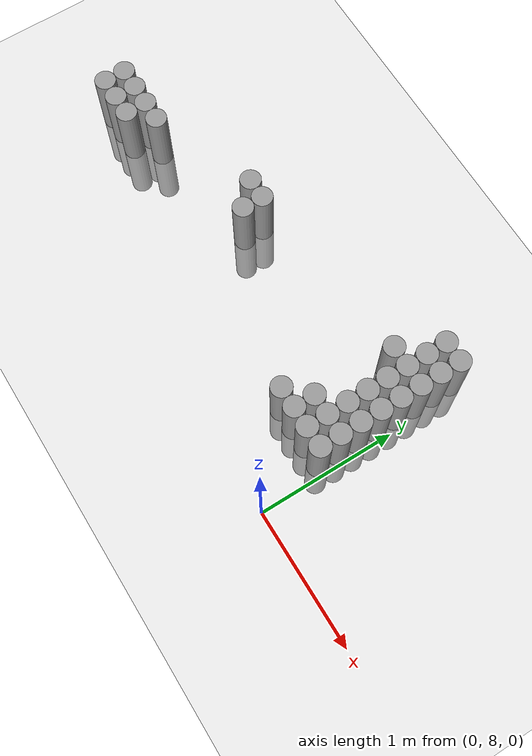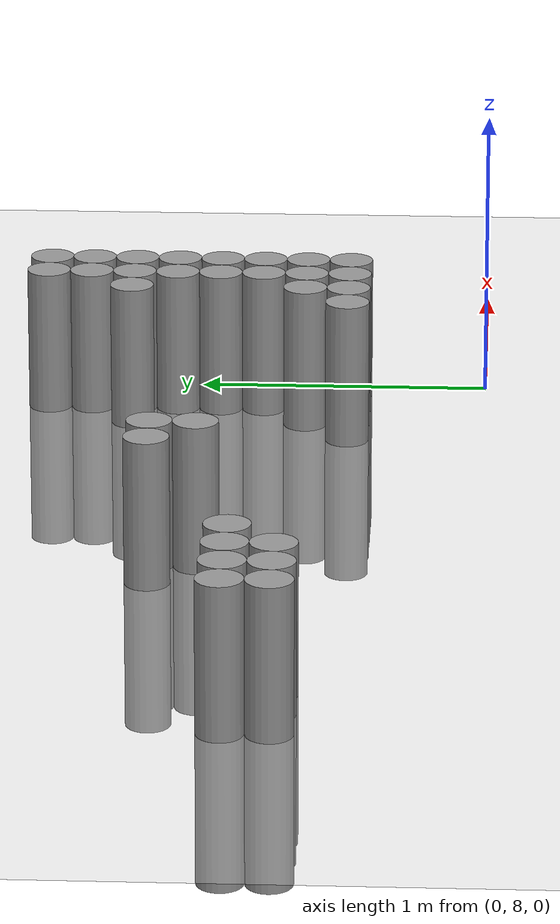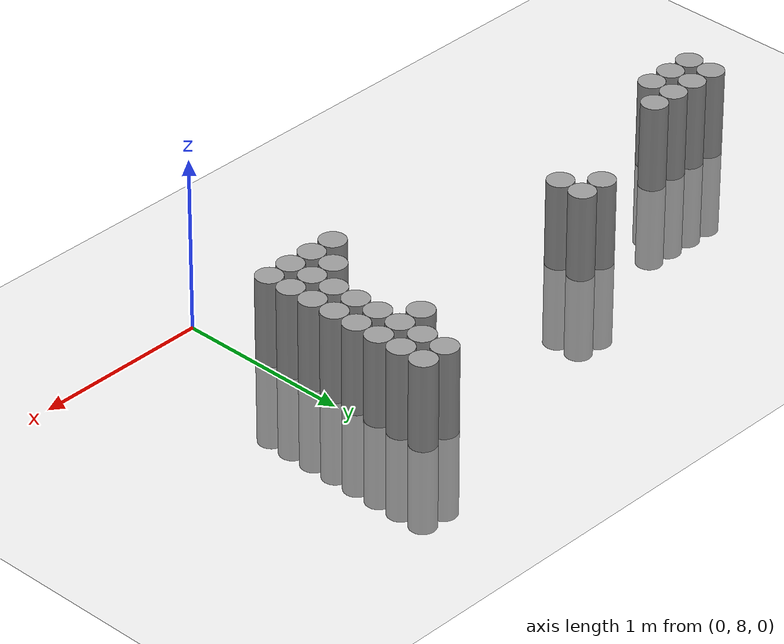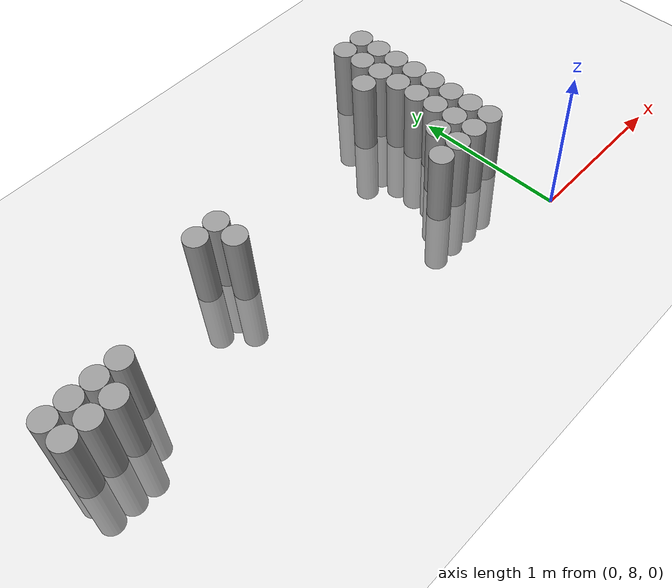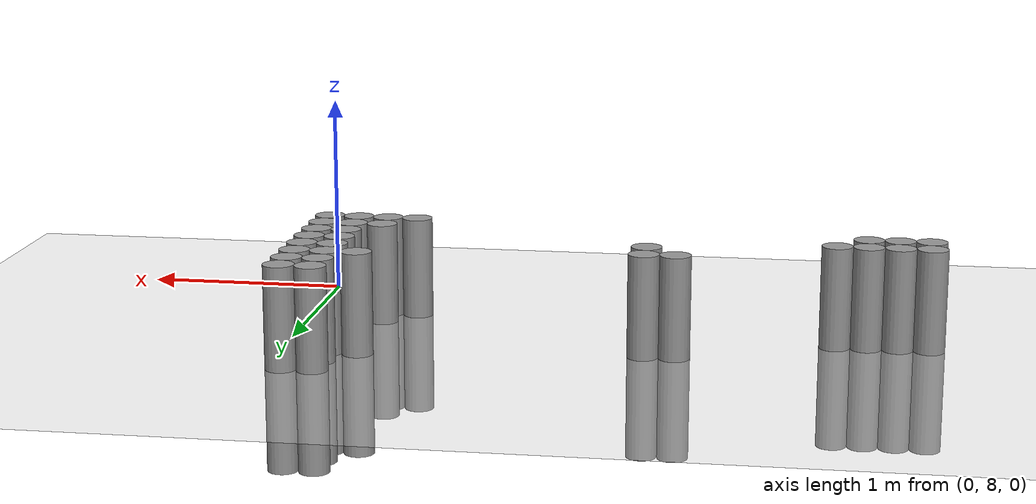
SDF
<sdf version="1.6">
 <world name="default">
  <model name="ground_plane">
   <static>1</static>
   <static>1</static>
   <link name="link">
    <collision name="collision">
     <geometry><plane><normal>0 0 1</normal><size>100 100</size></plane></geometry>
     <surface><friction><ode><mu>100</mu><mu2>50</mu2></ode></friction></surface>
    </collision>
    <visual name="visual">
     <cast_shadows>0</cast_shadows>
     <geometry><plane><normal>0 0 1</normal><size>100 100</size></plane></geometry>
     <material>
      <script><uri>file://media/materials/scripts/gazebo.material</uri><name>Gazebo/Grey</name></script>
     </material>
    </visual>
   </link>
  </model>
  <model name="unit_cylinder_169">
   <static>1</static>
   <pose>-3.075000 8.625000 0.000000 0.000000 0.000000 0.000000</pose>
   <link name="link">
    <inertial>
     <mass>1</mass>
     <inertia><ixx>0.145833</ixx><ixy>0</ixy><ixz>0</ixz><iyy>0.145833</iyy><iyz>0</iyz><izz>0.125</izz></inertia>
    </inertial>
    <collision name="collision">
     <geometry><cylinder><radius>0.075000</radius><length>1</length></cylinder></geometry>
    </collision>
    <visual name="visual">
     <geometry><cylinder><radius>0.075000</radius><length>1</length></cylinder></geometry>
     <material>
      <script><name>Gazebo/Grey</name><uri>file://media/materials/scripts/gazebo.material</uri></script>
     </material>
    </visual>
   </link>
  </model>
  <model name="unit_cylinder_170">
   <static>1</static>
   <pose>-3.075000 8.775000 0.000000 0.000000 0.000000 0.000000</pose>
   <link name="link">
    <inertial>
     <mass>1</mass>
     <inertia><ixx>0.145833</ixx><ixy>0</ixy><ixz>0</ixz><iyy>0.145833</iyy><iyz>0</iyz><izz>0.125</izz></inertia>
    </inertial>
    <collision name="collision">
     <geometry><cylinder><radius>0.075000</radius><length>1</length></cylinder></geometry>
    </collision>
    <visual name="visual">
     <geometry><cylinder><radius>0.075000</radius><length>1</length></cylinder></geometry>
     <material>
      <script><name>Gazebo/Grey</name><uri>file://media/materials/scripts/gazebo.material</uri></script>
     </material>
    </visual>
   </link>
  </model>
  <model name="unit_cylinder_171">
   <static>1</static>
   <pose>-2.925000 8.625000 0.000000 0.000000 0.000000 0.000000</pose>
   <link name="link">
    <inertial>
     <mass>1</mass>
     <inertia><ixx>0.145833</ixx><ixy>0</ixy><ixz>0</ixz><iyy>0.145833</iyy><iyz>0</iyz><izz>0.125</izz></inertia>
    </inertial>
    <collision name="collision">
     <geometry><cylinder><radius>0.075000</radius><length>1</length></cylinder></geometry>
    </collision>
    <visual name="visual">
     <geometry><cylinder><radius>0.075000</radius><length>1</length></cylinder></geometry>
     <material>
      <script><name>Gazebo/Grey</name><uri>file://media/materials/scripts/gazebo.material</uri></script>
     </material>
    </visual>
   </link>
  </model>
  <model name="unit_cylinder_172">
   <static>1</static>
   <pose>-2.925000 8.775000 0.000000 0.000000 0.000000 0.000000</pose>
   <link name="link">
    <inertial>
     <mass>1</mass>
     <inertia><ixx>0.145833</ixx><ixy>0</ixy><ixz>0</ixz><iyy>0.145833</iyy><iyz>0</iyz><izz>0.125</izz></inertia>
    </inertial>
    <collision name="collision">
     <geometry><cylinder><radius>0.075000</radius><length>1</length></cylinder></geometry>
    </collision>
    <visual name="visual">
     <geometry><cylinder><radius>0.075000</radius><length>1</length></cylinder></geometry>
     <material>
      <script><name>Gazebo/Grey</name><uri>file://media/materials/scripts/gazebo.material</uri></script>
     </material>
    </visual>
   </link>
  </model>
  <model name="unit_cylinder_173">
   <static>1</static>
   <pose>-2.775000 8.625000 0.000000 0.000000 0.000000 0.000000</pose>
   <link name="link">
    <inertial>
     <mass>1</mass>
     <inertia><ixx>0.145833</ixx><ixy>0</ixy><ixz>0</ixz><iyy>0.145833</iyy><iyz>0</iyz><izz>0.125</izz></inertia>
    </inertial>
    <collision name="collision">
     <geometry><cylinder><radius>0.075000</radius><length>1</length></cylinder></geometry>
    </collision>
    <visual name="visual">
     <geometry><cylinder><radius>0.075000</radius><length>1</length></cylinder></geometry>
     <material>
      <script><name>Gazebo/Grey</name><uri>file://media/materials/scripts/gazebo.material</uri></script>
     </material>
    </visual>
   </link>
  </model>
  <model name="unit_cylinder_174">
   <static>1</static>
   <pose>-2.775000 8.775000 0.000000 0.000000 0.000000 0.000000</pose>
   <link name="link">
    <inertial>
     <mass>1</mass>
     <inertia><ixx>0.145833</ixx><ixy>0</ixy><ixz>0</ixz><iyy>0.145833</iyy><iyz>0</iyz><izz>0.125</izz></inertia>
    </inertial>
    <collision name="collision">
     <geometry><cylinder><radius>0.075000</radius><length>1</length></cylinder></geometry>
    </collision>
    <visual name="visual">
     <geometry><cylinder><radius>0.075000</radius><length>1</length></cylinder></geometry>
     <material>
      <script><name>Gazebo/Grey</name><uri>file://media/materials/scripts/gazebo.material</uri></script>
     </material>
    </visual>
   </link>
  </model>
  <model name="unit_cylinder_175">
   <static>1</static>
   <pose>-2.625000 8.775000 0.000000 0.000000 0.000000 0.000000</pose>
   <link name="link">
    <inertial>
     <mass>1</mass>
     <inertia><ixx>0.145833</ixx><ixy>0</ixy><ixz>0</ixz><iyy>0.145833</iyy><iyz>0</iyz><izz>0.125</izz></inertia>
    </inertial>
    <collision name="collision">
     <geometry><cylinder><radius>0.075000</radius><length>1</length></cylinder></geometry>
    </collision>
    <visual name="visual">
     <geometry><cylinder><radius>0.075000</radius><length>1</length></cylinder></geometry>
     <material>
      <script><name>Gazebo/Grey</name><uri>file://media/materials/scripts/gazebo.material</uri></script>
     </material>
    </visual>
   </link>
  </model>
  <model name="unit_cylinder_185">
   <static>1</static>
   <pose>-1.875000 9.075000 0.000000 0.000000 0.000000 0.000000</pose>
   <link name="link">
    <inertial>
     <mass>1</mass>
     <inertia><ixx>0.145833</ixx><ixy>0</ixy><ixz>0</ixz><iyy>0.145833</iyy><iyz>0</iyz><izz>0.125</izz></inertia>
    </inertial>
    <collision name="collision">
     <geometry><cylinder><radius>0.075000</radius><length>1</length></cylinder></geometry>
    </collision>
    <visual name="visual">
     <geometry><cylinder><radius>0.075000</radius><length>1</length></cylinder></geometry>
     <material>
      <script><name>Gazebo/Grey</name><uri>file://media/materials/scripts/gazebo.material</uri></script>
     </material>
    </visual>
   </link>
  </model>
  <model name="unit_cylinder_186">
   <static>1</static>
   <pose>-1.725000 8.925000 0.000000 0.000000 0.000000 0.000000</pose>
   <link name="link">
    <inertial>
     <mass>1</mass>
     <inertia><ixx>0.145833</ixx><ixy>0</ixy><ixz>0</ixz><iyy>0.145833</iyy><iyz>0</iyz><izz>0.125</izz></inertia>
    </inertial>
    <collision name="collision">
     <geometry><cylinder><radius>0.075000</radius><length>1</length></cylinder></geometry>
    </collision>
    <visual name="visual">
     <geometry><cylinder><radius>0.075000</radius><length>1</length></cylinder></geometry>
     <material>
      <script><name>Gazebo/Grey</name><uri>file://media/materials/scripts/gazebo.material</uri></script>
     </material>
    </visual>
   </link>
  </model>
  <model name="unit_cylinder_187">
   <static>1</static>
   <pose>-1.725000 9.075000 0.000000 0.000000 0.000000 0.000000</pose>
   <link name="link">
    <inertial>
     <mass>1</mass>
     <inertia><ixx>0.145833</ixx><ixy>0</ixy><ixz>0</ixz><iyy>0.145833</iyy><iyz>0</iyz><izz>0.125</izz></inertia>
    </inertial>
    <collision name="collision">
     <geometry><cylinder><radius>0.075000</radius><length>1</length></cylinder></geometry>
    </collision>
    <visual name="visual">
     <geometry><cylinder><radius>0.075000</radius><length>1</length></cylinder></geometry>
     <material>
      <script><name>Gazebo/Grey</name><uri>file://media/materials/scripts/gazebo.material</uri></script>
     </material>
    </visual>
   </link>
  </model>
  <model name="unit_cylinder_188">
   <static>1</static>
   <pose>-0.525000 8.475000 0.000000 0.000000 0.000000 0.000000</pose>
   <link name="link">
    <inertial>
     <mass>1</mass>
     <inertia><ixx>0.145833</ixx><ixy>0</ixy><ixz>0</ixz><iyy>0.145833</iyy><iyz>0</iyz><izz>0.125</izz></inertia>
    </inertial>
    <collision name="collision">
     <geometry><cylinder><radius>0.075000</radius><length>1</length></cylinder></geometry>
    </collision>
    <visual name="visual">
     <geometry><cylinder><radius>0.075000</radius><length>1</length></cylinder></geometry>
     <material>
      <script><name>Gazebo/Grey</name><uri>file://media/materials/scripts/gazebo.material</uri></script>
     </material>
    </visual>
   </link>
  </model>
  <model name="unit_cylinder_190">
   <static>1</static>
   <pose>-0.375000 8.475000 0.000000 0.000000 0.000000 0.000000</pose>
   <link name="link">
    <inertial>
     <mass>1</mass>
     <inertia><ixx>0.145833</ixx><ixy>0</ixy><ixz>0</ixz><iyy>0.145833</iyy><iyz>0</iyz><izz>0.125</izz></inertia>
    </inertial>
    <collision name="collision">
     <geometry><cylinder><radius>0.075000</radius><length>1</length></cylinder></geometry>
    </collision>
    <visual name="visual">
     <geometry><cylinder><radius>0.075000</radius><length>1</length></cylinder></geometry>
     <material>
      <script><name>Gazebo/Grey</name><uri>file://media/materials/scripts/gazebo.material</uri></script>
     </material>
    </visual>
   </link>
  </model>
  <model name="unit_cylinder_191">
   <static>1</static>
   <pose>-0.375000 8.625000 0.000000 0.000000 0.000000 0.000000</pose>
   <link name="link">
    <inertial>
     <mass>1</mass>
     <inertia><ixx>0.145833</ixx><ixy>0</ixy><ixz>0</ixz><iyy>0.145833</iyy><iyz>0</iyz><izz>0.125</izz></inertia>
    </inertial>
    <collision name="collision">
     <geometry><cylinder><radius>0.075000</radius><length>1</length></cylinder></geometry>
    </collision>
    <visual name="visual">
     <geometry><cylinder><radius>0.075000</radius><length>1</length></cylinder></geometry>
     <material>
      <script><name>Gazebo/Grey</name><uri>file://media/materials/scripts/gazebo.material</uri></script>
     </material>
    </visual>
   </link>
  </model>
  <model name="unit_cylinder_192">
   <static>1</static>
   <pose>-0.375000 9.225000 0.000000 0.000000 0.000000 0.000000</pose>
   <link name="link">
    <inertial>
     <mass>1</mass>
     <inertia><ixx>0.145833</ixx><ixy>0</ixy><ixz>0</ixz><iyy>0.145833</iyy><iyz>0</iyz><izz>0.125</izz></inertia>
    </inertial>
    <collision name="collision">
     <geometry><cylinder><radius>0.075000</radius><length>1</length></cylinder></geometry>
    </collision>
    <visual name="visual">
     <geometry><cylinder><radius>0.075000</radius><length>1</length></cylinder></geometry>
     <material>
      <script><name>Gazebo/Grey</name><uri>file://media/materials/scripts/gazebo.material</uri></script>
     </material>
    </visual>
   </link>
  </model>
  <model name="unit_cylinder_200">
   <static>1</static>
   <pose>-0.225000 8.475000 0.000000 0.000000 0.000000 0.000000</pose>
   <link name="link">
    <inertial>
     <mass>1</mass>
     <inertia><ixx>0.145833</ixx><ixy>0</ixy><ixz>0</ixz><iyy>0.145833</iyy><iyz>0</iyz><izz>0.125</izz></inertia>
    </inertial>
    <collision name="collision">
     <geometry><cylinder><radius>0.075000</radius><length>1</length></cylinder></geometry>
    </collision>
    <visual name="visual">
     <geometry><cylinder><radius>0.075000</radius><length>1</length></cylinder></geometry>
     <material>
      <script><name>Gazebo/Grey</name><uri>file://media/materials/scripts/gazebo.material</uri></script>
     </material>
    </visual>
   </link>
  </model>
  <model name="unit_cylinder_201">
   <static>1</static>
   <pose>-0.225000 8.625000 0.000000 0.000000 0.000000 0.000000</pose>
   <link name="link">
    <inertial>
     <mass>1</mass>
     <inertia><ixx>0.145833</ixx><ixy>0</ixy><ixz>0</ixz><iyy>0.145833</iyy><iyz>0</iyz><izz>0.125</izz></inertia>
    </inertial>
    <collision name="collision">
     <geometry><cylinder><radius>0.075000</radius><length>1</length></cylinder></geometry>
    </collision>
    <visual name="visual">
     <geometry><cylinder><radius>0.075000</radius><length>1</length></cylinder></geometry>
     <material>
      <script><name>Gazebo/Grey</name><uri>file://media/materials/scripts/gazebo.material</uri></script>
     </material>
    </visual>
   </link>
  </model>
  <model name="unit_cylinder_202">
   <static>1</static>
   <pose>-0.225000 8.775000 0.000000 0.000000 0.000000 0.000000</pose>
   <link name="link">
    <inertial>
     <mass>1</mass>
     <inertia><ixx>0.145833</ixx><ixy>0</ixy><ixz>0</ixz><iyy>0.145833</iyy><iyz>0</iyz><izz>0.125</izz></inertia>
    </inertial>
    <collision name="collision">
     <geometry><cylinder><radius>0.075000</radius><length>1</length></cylinder></geometry>
    </collision>
    <visual name="visual">
     <geometry><cylinder><radius>0.075000</radius><length>1</length></cylinder></geometry>
     <material>
      <script><name>Gazebo/Grey</name><uri>file://media/materials/scripts/gazebo.material</uri></script>
     </material>
    </visual>
   </link>
  </model>
  <model name="unit_cylinder_203">
   <static>1</static>
   <pose>-0.225000 8.925000 0.000000 0.000000 0.000000 0.000000</pose>
   <link name="link">
    <inertial>
     <mass>1</mass>
     <inertia><ixx>0.145833</ixx><ixy>0</ixy><ixz>0</ixz><iyy>0.145833</iyy><iyz>0</iyz><izz>0.125</izz></inertia>
    </inertial>
    <collision name="collision">
     <geometry><cylinder><radius>0.075000</radius><length>1</length></cylinder></geometry>
    </collision>
    <visual name="visual">
     <geometry><cylinder><radius>0.075000</radius><length>1</length></cylinder></geometry>
     <material>
      <script><name>Gazebo/Grey</name><uri>file://media/materials/scripts/gazebo.material</uri></script>
     </material>
    </visual>
   </link>
  </model>
  <model name="unit_cylinder_204">
   <static>1</static>
   <pose>-0.225000 9.075000 0.000000 0.000000 0.000000 0.000000</pose>
   <link name="link">
    <inertial>
     <mass>1</mass>
     <inertia><ixx>0.145833</ixx><ixy>0</ixy><ixz>0</ixz><iyy>0.145833</iyy><iyz>0</iyz><izz>0.125</izz></inertia>
    </inertial>
    <collision name="collision">
     <geometry><cylinder><radius>0.075000</radius><length>1</length></cylinder></geometry>
    </collision>
    <visual name="visual">
     <geometry><cylinder><radius>0.075000</radius><length>1</length></cylinder></geometry>
     <material>
      <script><name>Gazebo/Grey</name><uri>file://media/materials/scripts/gazebo.material</uri></script>
     </material>
    </visual>
   </link>
  </model>
  <model name="unit_cylinder_205">
   <static>1</static>
   <pose>-0.225000 9.225000 0.000000 0.000000 0.000000 0.000000</pose>
   <link name="link">
    <inertial>
     <mass>1</mass>
     <inertia><ixx>0.145833</ixx><ixy>0</ixy><ixz>0</ixz><iyy>0.145833</iyy><iyz>0</iyz><izz>0.125</izz></inertia>
    </inertial>
    <collision name="collision">
     <geometry><cylinder><radius>0.075000</radius><length>1</length></cylinder></geometry>
    </collision>
    <visual name="visual">
     <geometry><cylinder><radius>0.075000</radius><length>1</length></cylinder></geometry>
     <material>
      <script><name>Gazebo/Grey</name><uri>file://media/materials/scripts/gazebo.material</uri></script>
     </material>
    </visual>
   </link>
  </model>
  <model name="unit_cylinder_206">
   <static>1</static>
   <pose>-0.225000 9.375000 0.000000 0.000000 0.000000 0.000000</pose>
   <link name="link">
    <inertial>
     <mass>1</mass>
     <inertia><ixx>0.145833</ixx><ixy>0</ixy><ixz>0</ixz><iyy>0.145833</iyy><iyz>0</iyz><izz>0.125</izz></inertia>
    </inertial>
    <collision name="collision">
     <geometry><cylinder><radius>0.075000</radius><length>1</length></cylinder></geometry>
    </collision>
    <visual name="visual">
     <geometry><cylinder><radius>0.075000</radius><length>1</length></cylinder></geometry>
     <material>
      <script><name>Gazebo/Grey</name><uri>file://media/materials/scripts/gazebo.material</uri></script>
     </material>
    </visual>
   </link>
  </model>
  <model name="unit_cylinder_207">
   <static>1</static>
   <pose>-0.225000 9.525000 0.000000 0.000000 0.000000 0.000000</pose>
   <link name="link">
    <inertial>
     <mass>1</mass>
     <inertia><ixx>0.145833</ixx><ixy>0</ixy><ixz>0</ixz><iyy>0.145833</iyy><iyz>0</iyz><izz>0.125</izz></inertia>
    </inertial>
    <collision name="collision">
     <geometry><cylinder><radius>0.075000</radius><length>1</length></cylinder></geometry>
    </collision>
    <visual name="visual">
     <geometry><cylinder><radius>0.075000</radius><length>1</length></cylinder></geometry>
     <material>
      <script><name>Gazebo/Grey</name><uri>file://media/materials/scripts/gazebo.material</uri></script>
     </material>
    </visual>
   </link>
  </model>
  <model name="unit_cylinder_230">
   <static>1</static>
   <pose>-0.075000 8.475000 0.000000 0.000000 0.000000 0.000000</pose>
   <link name="link">
    <inertial>
     <mass>1</mass>
     <inertia><ixx>0.145833</ixx><ixy>0</ixy><ixz>0</ixz><iyy>0.145833</iyy><iyz>0</iyz><izz>0.125</izz></inertia>
    </inertial>
    <collision name="collision">
     <geometry><cylinder><radius>0.075000</radius><length>1</length></cylinder></geometry>
    </collision>
    <visual name="visual">
     <geometry><cylinder><radius>0.075000</radius><length>1</length></cylinder></geometry>
     <material>
      <script><name>Gazebo/Grey</name><uri>file://media/materials/scripts/gazebo.material</uri></script>
     </material>
    </visual>
   </link>
  </model>
  <model name="unit_cylinder_231">
   <static>1</static>
   <pose>-0.075000 8.625000 0.000000 0.000000 0.000000 0.000000</pose>
   <link name="link">
    <inertial>
     <mass>1</mass>
     <inertia><ixx>0.145833</ixx><ixy>0</ixy><ixz>0</ixz><iyy>0.145833</iyy><iyz>0</iyz><izz>0.125</izz></inertia>
    </inertial>
    <collision name="collision">
     <geometry><cylinder><radius>0.075000</radius><length>1</length></cylinder></geometry>
    </collision>
    <visual name="visual">
     <geometry><cylinder><radius>0.075000</radius><length>1</length></cylinder></geometry>
     <material>
      <script><name>Gazebo/Grey</name><uri>file://media/materials/scripts/gazebo.material</uri></script>
     </material>
    </visual>
   </link>
  </model>
  <model name="unit_cylinder_232">
   <static>1</static>
   <pose>-0.075000 8.775000 0.000000 0.000000 0.000000 0.000000</pose>
   <link name="link">
    <inertial>
     <mass>1</mass>
     <inertia><ixx>0.145833</ixx><ixy>0</ixy><ixz>0</ixz><iyy>0.145833</iyy><iyz>0</iyz><izz>0.125</izz></inertia>
    </inertial>
    <collision name="collision">
     <geometry><cylinder><radius>0.075000</radius><length>1</length></cylinder></geometry>
    </collision>
    <visual name="visual">
     <geometry><cylinder><radius>0.075000</radius><length>1</length></cylinder></geometry>
     <material>
      <script><name>Gazebo/Grey</name><uri>file://media/materials/scripts/gazebo.material</uri></script>
     </material>
    </visual>
   </link>
  </model>
  <model name="unit_cylinder_233">
   <static>1</static>
   <pose>-0.075000 8.925000 0.000000 0.000000 0.000000 0.000000</pose>
   <link name="link">
    <inertial>
     <mass>1</mass>
     <inertia><ixx>0.145833</ixx><ixy>0</ixy><ixz>0</ixz><iyy>0.145833</iyy><iyz>0</iyz><izz>0.125</izz></inertia>
    </inertial>
    <collision name="collision">
     <geometry><cylinder><radius>0.075000</radius><length>1</length></cylinder></geometry>
    </collision>
    <visual name="visual">
     <geometry><cylinder><radius>0.075000</radius><length>1</length></cylinder></geometry>
     <material>
      <script><name>Gazebo/Grey</name><uri>file://media/materials/scripts/gazebo.material</uri></script>
     </material>
    </visual>
   </link>
  </model>
  <model name="unit_cylinder_234">
   <static>1</static>
   <pose>-0.075000 9.075000 0.000000 0.000000 0.000000 0.000000</pose>
   <link name="link">
    <inertial>
     <mass>1</mass>
     <inertia><ixx>0.145833</ixx><ixy>0</ixy><ixz>0</ixz><iyy>0.145833</iyy><iyz>0</iyz><izz>0.125</izz></inertia>
    </inertial>
    <collision name="collision">
     <geometry><cylinder><radius>0.075000</radius><length>1</length></cylinder></geometry>
    </collision>
    <visual name="visual">
     <geometry><cylinder><radius>0.075000</radius><length>1</length></cylinder></geometry>
     <material>
      <script><name>Gazebo/Grey</name><uri>file://media/materials/scripts/gazebo.material</uri></script>
     </material>
    </visual>
   </link>
  </model>
  <model name="unit_cylinder_235">
   <static>1</static>
   <pose>-0.075000 9.225000 0.000000 0.000000 0.000000 0.000000</pose>
   <link name="link">
    <inertial>
     <mass>1</mass>
     <inertia><ixx>0.145833</ixx><ixy>0</ixy><ixz>0</ixz><iyy>0.145833</iyy><iyz>0</iyz><izz>0.125</izz></inertia>
    </inertial>
    <collision name="collision">
     <geometry><cylinder><radius>0.075000</radius><length>1</length></cylinder></geometry>
    </collision>
    <visual name="visual">
     <geometry><cylinder><radius>0.075000</radius><length>1</length></cylinder></geometry>
     <material>
      <script><name>Gazebo/Grey</name><uri>file://media/materials/scripts/gazebo.material</uri></script>
     </material>
    </visual>
   </link>
  </model>
  <model name="unit_cylinder_236">
   <static>1</static>
   <pose>-0.075000 9.375000 0.000000 0.000000 0.000000 0.000000</pose>
   <link name="link">
    <inertial>
     <mass>1</mass>
     <inertia><ixx>0.145833</ixx><ixy>0</ixy><ixz>0</ixz><iyy>0.145833</iyy><iyz>0</iyz><izz>0.125</izz></inertia>
    </inertial>
    <collision name="collision">
     <geometry><cylinder><radius>0.075000</radius><length>1</length></cylinder></geometry>
    </collision>
    <visual name="visual">
     <geometry><cylinder><radius>0.075000</radius><length>1</length></cylinder></geometry>
     <material>
      <script><name>Gazebo/Grey</name><uri>file://media/materials/scripts/gazebo.material</uri></script>
     </material>
    </visual>
   </link>
  </model>
  <model name="unit_cylinder_237">
   <static>1</static>
   <pose>-0.075000 9.525000 0.000000 0.000000 0.000000 0.000000</pose>
   <link name="link">
    <inertial>
     <mass>1</mass>
     <inertia><ixx>0.145833</ixx><ixy>0</ixy><ixz>0</ixz><iyy>0.145833</iyy><iyz>0</iyz><izz>0.125</izz></inertia>
    </inertial>
    <collision name="collision">
     <geometry><cylinder><radius>0.075000</radius><length>1</length></cylinder></geometry>
    </collision>
    <visual name="visual">
     <geometry><cylinder><radius>0.075000</radius><length>1</length></cylinder></geometry>
     <material>
      <script><name>Gazebo/Grey</name><uri>file://media/materials/scripts/gazebo.material</uri></script>
     </material>
    </visual>
   </link>
  </model>
 </world>
</sdf>
